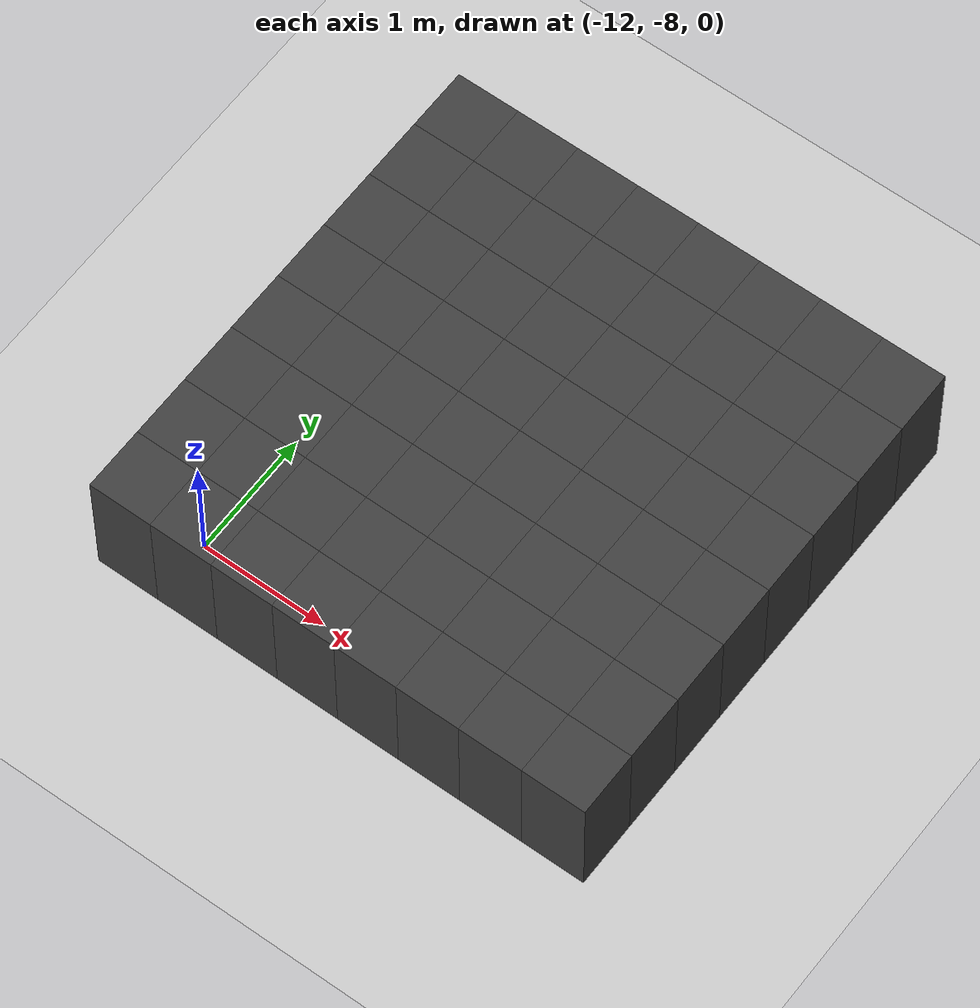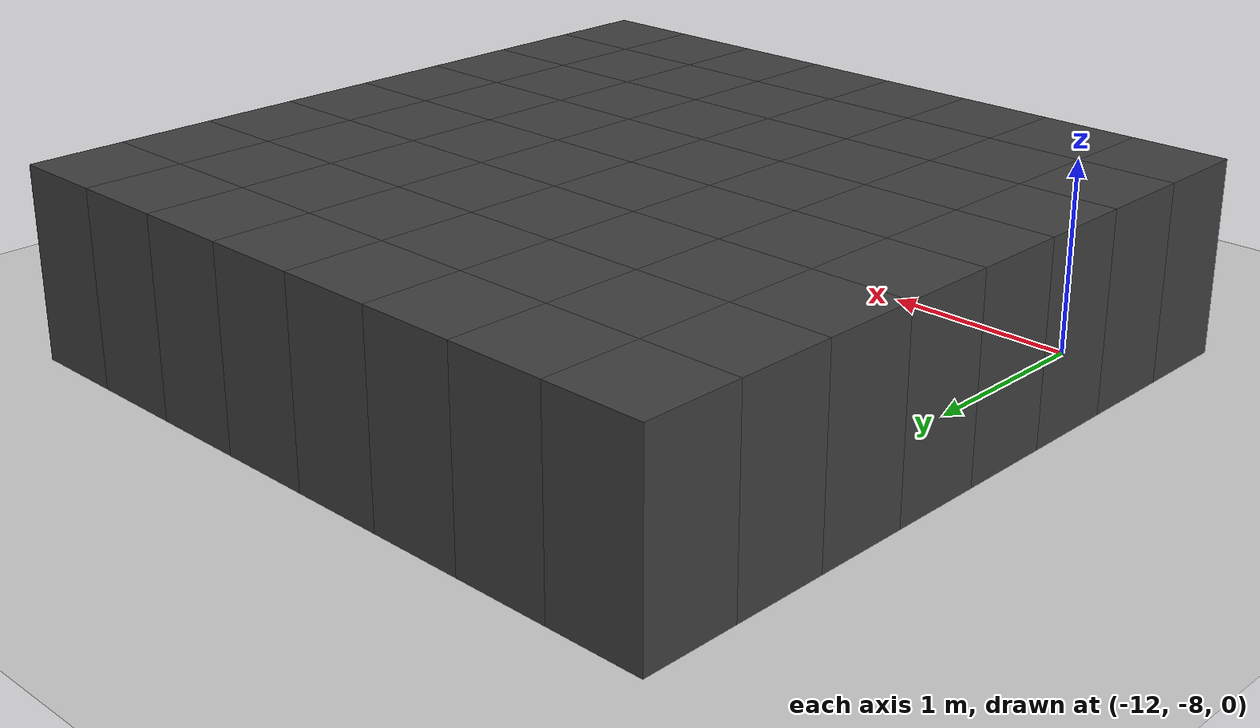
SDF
<sdf version="1.7">
 <world name="map_14735">
  <model name="ground_plane">
   <static>true</static>
   <link name="link">
    <collision name="collision">
     <geometry><plane><normal>0 0 1</normal><size>200 200</size></plane></geometry>
    </collision>
    <visual name="visual">
     <geometry><plane><normal>0 0 1</normal><size>200 200</size></plane></geometry>
     <material><ambient>0.8 0.8 0.8 1</ambient><diffuse>0.8 0.8 0.8 1</diffuse></material>
    </visual>
   </link>
  </model>
  <model name="maze_environment">
   <static>true</static>
   <link name="wall_1102">
    <pose>-12.250 -4.750 0.500 0 0 0</pose>
    <collision name="col"><geometry><box><size>0.5 0.5 1.0</size></box></geometry></collision>
    <visual name="vis">
     <geometry><box><size>0.5 0.5 1.0</size></box></geometry>
     <material><ambient>0.15 0.15 0.15 1</ambient><diffuse>0.25 0.25 0.25 1</diffuse></material>
    </visual>
   </link>
   <link name="wall_1103">
    <pose>-11.750 -4.750 0.500 0 0 0</pose>
    <collision name="col"><geometry><box><size>0.5 0.5 1.0</size></box></geometry></collision>
    <visual name="vis">
     <geometry><box><size>0.5 0.5 1.0</size></box></geometry>
     <material><ambient>0.15 0.15 0.15 1</ambient><diffuse>0.25 0.25 0.25 1</diffuse></material>
    </visual>
   </link>
   <link name="wall_1104">
    <pose>-11.250 -4.750 0.500 0 0 0</pose>
    <collision name="col"><geometry><box><size>0.5 0.5 1.0</size></box></geometry></collision>
    <visual name="vis">
     <geometry><box><size>0.5 0.5 1.0</size></box></geometry>
     <material><ambient>0.15 0.15 0.15 1</ambient><diffuse>0.25 0.25 0.25 1</diffuse></material>
    </visual>
   </link>
   <link name="wall_1105">
    <pose>-10.750 -4.750 0.500 0 0 0</pose>
    <collision name="col"><geometry><box><size>0.5 0.5 1.0</size></box></geometry></collision>
    <visual name="vis">
     <geometry><box><size>0.5 0.5 1.0</size></box></geometry>
     <material><ambient>0.15 0.15 0.15 1</ambient><diffuse>0.25 0.25 0.25 1</diffuse></material>
    </visual>
   </link>
   <link name="wall_1106">
    <pose>-10.250 -4.750 0.500 0 0 0</pose>
    <collision name="col"><geometry><box><size>0.5 0.5 1.0</size></box></geometry></collision>
    <visual name="vis">
     <geometry><box><size>0.5 0.5 1.0</size></box></geometry>
     <material><ambient>0.15 0.15 0.15 1</ambient><diffuse>0.25 0.25 0.25 1</diffuse></material>
    </visual>
   </link>
   <link name="wall_1107">
    <pose>-9.750 -4.750 0.500 0 0 0</pose>
    <collision name="col"><geometry><box><size>0.5 0.5 1.0</size></box></geometry></collision>
    <visual name="vis">
     <geometry><box><size>0.5 0.5 1.0</size></box></geometry>
     <material><ambient>0.15 0.15 0.15 1</ambient><diffuse>0.25 0.25 0.25 1</diffuse></material>
    </visual>
   </link>
   <link name="wall_1108">
    <pose>-9.250 -4.750 0.500 0 0 0</pose>
    <collision name="col"><geometry><box><size>0.5 0.5 1.0</size></box></geometry></collision>
    <visual name="vis">
     <geometry><box><size>0.5 0.5 1.0</size></box></geometry>
     <material><ambient>0.15 0.15 0.15 1</ambient><diffuse>0.25 0.25 0.25 1</diffuse></material>
    </visual>
   </link>
   <link name="wall_1109">
    <pose>-8.750 -4.750 0.500 0 0 0</pose>
    <collision name="col"><geometry><box><size>0.5 0.5 1.0</size></box></geometry></collision>
    <visual name="vis">
     <geometry><box><size>0.5 0.5 1.0</size></box></geometry>
     <material><ambient>0.15 0.15 0.15 1</ambient><diffuse>0.25 0.25 0.25 1</diffuse></material>
    </visual>
   </link>
   <link name="wall_1142">
    <pose>-12.250 -5.250 0.500 0 0 0</pose>
    <collision name="col"><geometry><box><size>0.5 0.5 1.0</size></box></geometry></collision>
    <visual name="vis">
     <geometry><box><size>0.5 0.5 1.0</size></box></geometry>
     <material><ambient>0.15 0.15 0.15 1</ambient><diffuse>0.25 0.25 0.25 1</diffuse></material>
    </visual>
   </link>
   <link name="wall_1143">
    <pose>-11.750 -5.250 0.500 0 0 0</pose>
    <collision name="col"><geometry><box><size>0.5 0.5 1.0</size></box></geometry></collision>
    <visual name="vis">
     <geometry><box><size>0.5 0.5 1.0</size></box></geometry>
     <material><ambient>0.15 0.15 0.15 1</ambient><diffuse>0.25 0.25 0.25 1</diffuse></material>
    </visual>
   </link>
   <link name="wall_1144">
    <pose>-11.250 -5.250 0.500 0 0 0</pose>
    <collision name="col"><geometry><box><size>0.5 0.5 1.0</size></box></geometry></collision>
    <visual name="vis">
     <geometry><box><size>0.5 0.5 1.0</size></box></geometry>
     <material><ambient>0.15 0.15 0.15 1</ambient><diffuse>0.25 0.25 0.25 1</diffuse></material>
    </visual>
   </link>
   <link name="wall_1145">
    <pose>-10.750 -5.250 0.500 0 0 0</pose>
    <collision name="col"><geometry><box><size>0.5 0.5 1.0</size></box></geometry></collision>
    <visual name="vis">
     <geometry><box><size>0.5 0.5 1.0</size></box></geometry>
     <material><ambient>0.15 0.15 0.15 1</ambient><diffuse>0.25 0.25 0.25 1</diffuse></material>
    </visual>
   </link>
   <link name="wall_1146">
    <pose>-10.250 -5.250 0.500 0 0 0</pose>
    <collision name="col"><geometry><box><size>0.5 0.5 1.0</size></box></geometry></collision>
    <visual name="vis">
     <geometry><box><size>0.5 0.5 1.0</size></box></geometry>
     <material><ambient>0.15 0.15 0.15 1</ambient><diffuse>0.25 0.25 0.25 1</diffuse></material>
    </visual>
   </link>
   <link name="wall_1147">
    <pose>-9.750 -5.250 0.500 0 0 0</pose>
    <collision name="col"><geometry><box><size>0.5 0.5 1.0</size></box></geometry></collision>
    <visual name="vis">
     <geometry><box><size>0.5 0.5 1.0</size></box></geometry>
     <material><ambient>0.15 0.15 0.15 1</ambient><diffuse>0.25 0.25 0.25 1</diffuse></material>
    </visual>
   </link>
   <link name="wall_1148">
    <pose>-9.250 -5.250 0.500 0 0 0</pose>
    <collision name="col"><geometry><box><size>0.5 0.5 1.0</size></box></geometry></collision>
    <visual name="vis">
     <geometry><box><size>0.5 0.5 1.0</size></box></geometry>
     <material><ambient>0.15 0.15 0.15 1</ambient><diffuse>0.25 0.25 0.25 1</diffuse></material>
    </visual>
   </link>
   <link name="wall_1149">
    <pose>-8.750 -5.250 0.500 0 0 0</pose>
    <collision name="col"><geometry><box><size>0.5 0.5 1.0</size></box></geometry></collision>
    <visual name="vis">
     <geometry><box><size>0.5 0.5 1.0</size></box></geometry>
     <material><ambient>0.15 0.15 0.15 1</ambient><diffuse>0.25 0.25 0.25 1</diffuse></material>
    </visual>
   </link>
   <link name="wall_1180">
    <pose>-12.250 -5.750 0.500 0 0 0</pose>
    <collision name="col"><geometry><box><size>0.5 0.5 1.0</size></box></geometry></collision>
    <visual name="vis">
     <geometry><box><size>0.5 0.5 1.0</size></box></geometry>
     <material><ambient>0.15 0.15 0.15 1</ambient><diffuse>0.25 0.25 0.25 1</diffuse></material>
    </visual>
   </link>
   <link name="wall_1181">
    <pose>-11.750 -5.750 0.500 0 0 0</pose>
    <collision name="col"><geometry><box><size>0.5 0.5 1.0</size></box></geometry></collision>
    <visual name="vis">
     <geometry><box><size>0.5 0.5 1.0</size></box></geometry>
     <material><ambient>0.15 0.15 0.15 1</ambient><diffuse>0.25 0.25 0.25 1</diffuse></material>
    </visual>
   </link>
   <link name="wall_1182">
    <pose>-11.250 -5.750 0.500 0 0 0</pose>
    <collision name="col"><geometry><box><size>0.5 0.5 1.0</size></box></geometry></collision>
    <visual name="vis">
     <geometry><box><size>0.5 0.5 1.0</size></box></geometry>
     <material><ambient>0.15 0.15 0.15 1</ambient><diffuse>0.25 0.25 0.25 1</diffuse></material>
    </visual>
   </link>
   <link name="wall_1183">
    <pose>-10.750 -5.750 0.500 0 0 0</pose>
    <collision name="col"><geometry><box><size>0.5 0.5 1.0</size></box></geometry></collision>
    <visual name="vis">
     <geometry><box><size>0.5 0.5 1.0</size></box></geometry>
     <material><ambient>0.15 0.15 0.15 1</ambient><diffuse>0.25 0.25 0.25 1</diffuse></material>
    </visual>
   </link>
   <link name="wall_1184">
    <pose>-10.250 -5.750 0.500 0 0 0</pose>
    <collision name="col"><geometry><box><size>0.5 0.5 1.0</size></box></geometry></collision>
    <visual name="vis">
     <geometry><box><size>0.5 0.5 1.0</size></box></geometry>
     <material><ambient>0.15 0.15 0.15 1</ambient><diffuse>0.25 0.25 0.25 1</diffuse></material>
    </visual>
   </link>
   <link name="wall_1185">
    <pose>-9.750 -5.750 0.500 0 0 0</pose>
    <collision name="col"><geometry><box><size>0.5 0.5 1.0</size></box></geometry></collision>
    <visual name="vis">
     <geometry><box><size>0.5 0.5 1.0</size></box></geometry>
     <material><ambient>0.15 0.15 0.15 1</ambient><diffuse>0.25 0.25 0.25 1</diffuse></material>
    </visual>
   </link>
   <link name="wall_1186">
    <pose>-9.250 -5.750 0.500 0 0 0</pose>
    <collision name="col"><geometry><box><size>0.5 0.5 1.0</size></box></geometry></collision>
    <visual name="vis">
     <geometry><box><size>0.5 0.5 1.0</size></box></geometry>
     <material><ambient>0.15 0.15 0.15 1</ambient><diffuse>0.25 0.25 0.25 1</diffuse></material>
    </visual>
   </link>
   <link name="wall_1187">
    <pose>-8.750 -5.750 0.500 0 0 0</pose>
    <collision name="col"><geometry><box><size>0.5 0.5 1.0</size></box></geometry></collision>
    <visual name="vis">
     <geometry><box><size>0.5 0.5 1.0</size></box></geometry>
     <material><ambient>0.15 0.15 0.15 1</ambient><diffuse>0.25 0.25 0.25 1</diffuse></material>
    </visual>
   </link>
   <link name="wall_1218">
    <pose>-12.250 -6.250 0.500 0 0 0</pose>
    <collision name="col"><geometry><box><size>0.5 0.5 1.0</size></box></geometry></collision>
    <visual name="vis">
     <geometry><box><size>0.5 0.5 1.0</size></box></geometry>
     <material><ambient>0.15 0.15 0.15 1</ambient><diffuse>0.25 0.25 0.25 1</diffuse></material>
    </visual>
   </link>
   <link name="wall_1219">
    <pose>-11.750 -6.250 0.500 0 0 0</pose>
    <collision name="col"><geometry><box><size>0.5 0.5 1.0</size></box></geometry></collision>
    <visual name="vis">
     <geometry><box><size>0.5 0.5 1.0</size></box></geometry>
     <material><ambient>0.15 0.15 0.15 1</ambient><diffuse>0.25 0.25 0.25 1</diffuse></material>
    </visual>
   </link>
   <link name="wall_1220">
    <pose>-11.250 -6.250 0.500 0 0 0</pose>
    <collision name="col"><geometry><box><size>0.5 0.5 1.0</size></box></geometry></collision>
    <visual name="vis">
     <geometry><box><size>0.5 0.5 1.0</size></box></geometry>
     <material><ambient>0.15 0.15 0.15 1</ambient><diffuse>0.25 0.25 0.25 1</diffuse></material>
    </visual>
   </link>
   <link name="wall_1221">
    <pose>-10.750 -6.250 0.500 0 0 0</pose>
    <collision name="col"><geometry><box><size>0.5 0.5 1.0</size></box></geometry></collision>
    <visual name="vis">
     <geometry><box><size>0.5 0.5 1.0</size></box></geometry>
     <material><ambient>0.15 0.15 0.15 1</ambient><diffuse>0.25 0.25 0.25 1</diffuse></material>
    </visual>
   </link>
   <link name="wall_1222">
    <pose>-10.250 -6.250 0.500 0 0 0</pose>
    <collision name="col"><geometry><box><size>0.5 0.5 1.0</size></box></geometry></collision>
    <visual name="vis">
     <geometry><box><size>0.5 0.5 1.0</size></box></geometry>
     <material><ambient>0.15 0.15 0.15 1</ambient><diffuse>0.25 0.25 0.25 1</diffuse></material>
    </visual>
   </link>
   <link name="wall_1223">
    <pose>-9.750 -6.250 0.500 0 0 0</pose>
    <collision name="col"><geometry><box><size>0.5 0.5 1.0</size></box></geometry></collision>
    <visual name="vis">
     <geometry><box><size>0.5 0.5 1.0</size></box></geometry>
     <material><ambient>0.15 0.15 0.15 1</ambient><diffuse>0.25 0.25 0.25 1</diffuse></material>
    </visual>
   </link>
   <link name="wall_1224">
    <pose>-9.250 -6.250 0.500 0 0 0</pose>
    <collision name="col"><geometry><box><size>0.5 0.5 1.0</size></box></geometry></collision>
    <visual name="vis">
     <geometry><box><size>0.5 0.5 1.0</size></box></geometry>
     <material><ambient>0.15 0.15 0.15 1</ambient><diffuse>0.25 0.25 0.25 1</diffuse></material>
    </visual>
   </link>
   <link name="wall_1225">
    <pose>-8.750 -6.250 0.500 0 0 0</pose>
    <collision name="col"><geometry><box><size>0.5 0.5 1.0</size></box></geometry></collision>
    <visual name="vis">
     <geometry><box><size>0.5 0.5 1.0</size></box></geometry>
     <material><ambient>0.15 0.15 0.15 1</ambient><diffuse>0.25 0.25 0.25 1</diffuse></material>
    </visual>
   </link>
   <link name="wall_1256">
    <pose>-12.250 -6.750 0.500 0 0 0</pose>
    <collision name="col"><geometry><box><size>0.5 0.5 1.0</size></box></geometry></collision>
    <visual name="vis">
     <geometry><box><size>0.5 0.5 1.0</size></box></geometry>
     <material><ambient>0.15 0.15 0.15 1</ambient><diffuse>0.25 0.25 0.25 1</diffuse></material>
    </visual>
   </link>
   <link name="wall_1257">
    <pose>-11.750 -6.750 0.500 0 0 0</pose>
    <collision name="col"><geometry><box><size>0.5 0.5 1.0</size></box></geometry></collision>
    <visual name="vis">
     <geometry><box><size>0.5 0.5 1.0</size></box></geometry>
     <material><ambient>0.15 0.15 0.15 1</ambient><diffuse>0.25 0.25 0.25 1</diffuse></material>
    </visual>
   </link>
   <link name="wall_1258">
    <pose>-11.250 -6.750 0.500 0 0 0</pose>
    <collision name="col"><geometry><box><size>0.5 0.5 1.0</size></box></geometry></collision>
    <visual name="vis">
     <geometry><box><size>0.5 0.5 1.0</size></box></geometry>
     <material><ambient>0.15 0.15 0.15 1</ambient><diffuse>0.25 0.25 0.25 1</diffuse></material>
    </visual>
   </link>
   <link name="wall_1259">
    <pose>-10.750 -6.750 0.500 0 0 0</pose>
    <collision name="col"><geometry><box><size>0.5 0.5 1.0</size></box></geometry></collision>
    <visual name="vis">
     <geometry><box><size>0.5 0.5 1.0</size></box></geometry>
     <material><ambient>0.15 0.15 0.15 1</ambient><diffuse>0.25 0.25 0.25 1</diffuse></material>
    </visual>
   </link>
   <link name="wall_1260">
    <pose>-10.250 -6.750 0.500 0 0 0</pose>
    <collision name="col"><geometry><box><size>0.5 0.5 1.0</size></box></geometry></collision>
    <visual name="vis">
     <geometry><box><size>0.5 0.5 1.0</size></box></geometry>
     <material><ambient>0.15 0.15 0.15 1</ambient><diffuse>0.25 0.25 0.25 1</diffuse></material>
    </visual>
   </link>
   <link name="wall_1261">
    <pose>-9.750 -6.750 0.500 0 0 0</pose>
    <collision name="col"><geometry><box><size>0.5 0.5 1.0</size></box></geometry></collision>
    <visual name="vis">
     <geometry><box><size>0.5 0.5 1.0</size></box></geometry>
     <material><ambient>0.15 0.15 0.15 1</ambient><diffuse>0.25 0.25 0.25 1</diffuse></material>
    </visual>
   </link>
   <link name="wall_1262">
    <pose>-9.250 -6.750 0.500 0 0 0</pose>
    <collision name="col"><geometry><box><size>0.5 0.5 1.0</size></box></geometry></collision>
    <visual name="vis">
     <geometry><box><size>0.5 0.5 1.0</size></box></geometry>
     <material><ambient>0.15 0.15 0.15 1</ambient><diffuse>0.25 0.25 0.25 1</diffuse></material>
    </visual>
   </link>
   <link name="wall_1263">
    <pose>-8.750 -6.750 0.500 0 0 0</pose>
    <collision name="col"><geometry><box><size>0.5 0.5 1.0</size></box></geometry></collision>
    <visual name="vis">
     <geometry><box><size>0.5 0.5 1.0</size></box></geometry>
     <material><ambient>0.15 0.15 0.15 1</ambient><diffuse>0.25 0.25 0.25 1</diffuse></material>
    </visual>
   </link>
   <link name="wall_1296">
    <pose>-12.250 -7.250 0.500 0 0 0</pose>
    <collision name="col"><geometry><box><size>0.5 0.5 1.0</size></box></geometry></collision>
    <visual name="vis">
     <geometry><box><size>0.5 0.5 1.0</size></box></geometry>
     <material><ambient>0.15 0.15 0.15 1</ambient><diffuse>0.25 0.25 0.25 1</diffuse></material>
    </visual>
   </link>
   <link name="wall_1297">
    <pose>-11.750 -7.250 0.500 0 0 0</pose>
    <collision name="col"><geometry><box><size>0.5 0.5 1.0</size></box></geometry></collision>
    <visual name="vis">
     <geometry><box><size>0.5 0.5 1.0</size></box></geometry>
     <material><ambient>0.15 0.15 0.15 1</ambient><diffuse>0.25 0.25 0.25 1</diffuse></material>
    </visual>
   </link>
   <link name="wall_1298">
    <pose>-11.250 -7.250 0.500 0 0 0</pose>
    <collision name="col"><geometry><box><size>0.5 0.5 1.0</size></box></geometry></collision>
    <visual name="vis">
     <geometry><box><size>0.5 0.5 1.0</size></box></geometry>
     <material><ambient>0.15 0.15 0.15 1</ambient><diffuse>0.25 0.25 0.25 1</diffuse></material>
    </visual>
   </link>
   <link name="wall_1299">
    <pose>-10.750 -7.250 0.500 0 0 0</pose>
    <collision name="col"><geometry><box><size>0.5 0.5 1.0</size></box></geometry></collision>
    <visual name="vis">
     <geometry><box><size>0.5 0.5 1.0</size></box></geometry>
     <material><ambient>0.15 0.15 0.15 1</ambient><diffuse>0.25 0.25 0.25 1</diffuse></material>
    </visual>
   </link>
   <link name="wall_1300">
    <pose>-10.250 -7.250 0.500 0 0 0</pose>
    <collision name="col"><geometry><box><size>0.5 0.5 1.0</size></box></geometry></collision>
    <visual name="vis">
     <geometry><box><size>0.5 0.5 1.0</size></box></geometry>
     <material><ambient>0.15 0.15 0.15 1</ambient><diffuse>0.25 0.25 0.25 1</diffuse></material>
    </visual>
   </link>
   <link name="wall_1301">
    <pose>-9.750 -7.250 0.500 0 0 0</pose>
    <collision name="col"><geometry><box><size>0.5 0.5 1.0</size></box></geometry></collision>
    <visual name="vis">
     <geometry><box><size>0.5 0.5 1.0</size></box></geometry>
     <material><ambient>0.15 0.15 0.15 1</ambient><diffuse>0.25 0.25 0.25 1</diffuse></material>
    </visual>
   </link>
   <link name="wall_1302">
    <pose>-9.250 -7.250 0.500 0 0 0</pose>
    <collision name="col"><geometry><box><size>0.5 0.5 1.0</size></box></geometry></collision>
    <visual name="vis">
     <geometry><box><size>0.5 0.5 1.0</size></box></geometry>
     <material><ambient>0.15 0.15 0.15 1</ambient><diffuse>0.25 0.25 0.25 1</diffuse></material>
    </visual>
   </link>
   <link name="wall_1303">
    <pose>-8.750 -7.250 0.500 0 0 0</pose>
    <collision name="col"><geometry><box><size>0.5 0.5 1.0</size></box></geometry></collision>
    <visual name="vis">
     <geometry><box><size>0.5 0.5 1.0</size></box></geometry>
     <material><ambient>0.15 0.15 0.15 1</ambient><diffuse>0.25 0.25 0.25 1</diffuse></material>
    </visual>
   </link>
   <link name="wall_1337">
    <pose>-12.250 -7.750 0.500 0 0 0</pose>
    <collision name="col"><geometry><box><size>0.5 0.5 1.0</size></box></geometry></collision>
    <visual name="vis">
     <geometry><box><size>0.5 0.5 1.0</size></box></geometry>
     <material><ambient>0.15 0.15 0.15 1</ambient><diffuse>0.25 0.25 0.25 1</diffuse></material>
    </visual>
   </link>
   <link name="wall_1338">
    <pose>-11.750 -7.750 0.500 0 0 0</pose>
    <collision name="col"><geometry><box><size>0.5 0.5 1.0</size></box></geometry></collision>
    <visual name="vis">
     <geometry><box><size>0.5 0.5 1.0</size></box></geometry>
     <material><ambient>0.15 0.15 0.15 1</ambient><diffuse>0.25 0.25 0.25 1</diffuse></material>
    </visual>
   </link>
   <link name="wall_1339">
    <pose>-11.250 -7.750 0.500 0 0 0</pose>
    <collision name="col"><geometry><box><size>0.5 0.5 1.0</size></box></geometry></collision>
    <visual name="vis">
     <geometry><box><size>0.5 0.5 1.0</size></box></geometry>
     <material><ambient>0.15 0.15 0.15 1</ambient><diffuse>0.25 0.25 0.25 1</diffuse></material>
    </visual>
   </link>
   <link name="wall_1340">
    <pose>-10.750 -7.750 0.500 0 0 0</pose>
    <collision name="col"><geometry><box><size>0.5 0.5 1.0</size></box></geometry></collision>
    <visual name="vis">
     <geometry><box><size>0.5 0.5 1.0</size></box></geometry>
     <material><ambient>0.15 0.15 0.15 1</ambient><diffuse>0.25 0.25 0.25 1</diffuse></material>
    </visual>
   </link>
   <link name="wall_1341">
    <pose>-10.250 -7.750 0.500 0 0 0</pose>
    <collision name="col"><geometry><box><size>0.5 0.5 1.0</size></box></geometry></collision>
    <visual name="vis">
     <geometry><box><size>0.5 0.5 1.0</size></box></geometry>
     <material><ambient>0.15 0.15 0.15 1</ambient><diffuse>0.25 0.25 0.25 1</diffuse></material>
    </visual>
   </link>
   <link name="wall_1342">
    <pose>-9.750 -7.750 0.500 0 0 0</pose>
    <collision name="col"><geometry><box><size>0.5 0.5 1.0</size></box></geometry></collision>
    <visual name="vis">
     <geometry><box><size>0.5 0.5 1.0</size></box></geometry>
     <material><ambient>0.15 0.15 0.15 1</ambient><diffuse>0.25 0.25 0.25 1</diffuse></material>
    </visual>
   </link>
   <link name="wall_1343">
    <pose>-9.250 -7.750 0.500 0 0 0</pose>
    <collision name="col"><geometry><box><size>0.5 0.5 1.0</size></box></geometry></collision>
    <visual name="vis">
     <geometry><box><size>0.5 0.5 1.0</size></box></geometry>
     <material><ambient>0.15 0.15 0.15 1</ambient><diffuse>0.25 0.25 0.25 1</diffuse></material>
    </visual>
   </link>
   <link name="wall_1344">
    <pose>-8.750 -7.750 0.500 0 0 0</pose>
    <collision name="col"><geometry><box><size>0.5 0.5 1.0</size></box></geometry></collision>
    <visual name="vis">
     <geometry><box><size>0.5 0.5 1.0</size></box></geometry>
     <material><ambient>0.15 0.15 0.15 1</ambient><diffuse>0.25 0.25 0.25 1</diffuse></material>
    </visual>
   </link>
   <link name="wall_1379">
    <pose>-12.250 -8.250 0.500 0 0 0</pose>
    <collision name="col"><geometry><box><size>0.5 0.5 1.0</size></box></geometry></collision>
    <visual name="vis">
     <geometry><box><size>0.5 0.5 1.0</size></box></geometry>
     <material><ambient>0.15 0.15 0.15 1</ambient><diffuse>0.25 0.25 0.25 1</diffuse></material>
    </visual>
   </link>
   <link name="wall_1380">
    <pose>-11.750 -8.250 0.500 0 0 0</pose>
    <collision name="col"><geometry><box><size>0.5 0.5 1.0</size></box></geometry></collision>
    <visual name="vis">
     <geometry><box><size>0.5 0.5 1.0</size></box></geometry>
     <material><ambient>0.15 0.15 0.15 1</ambient><diffuse>0.25 0.25 0.25 1</diffuse></material>
    </visual>
   </link>
   <link name="wall_1381">
    <pose>-11.250 -8.250 0.500 0 0 0</pose>
    <collision name="col"><geometry><box><size>0.5 0.5 1.0</size></box></geometry></collision>
    <visual name="vis">
     <geometry><box><size>0.5 0.5 1.0</size></box></geometry>
     <material><ambient>0.15 0.15 0.15 1</ambient><diffuse>0.25 0.25 0.25 1</diffuse></material>
    </visual>
   </link>
   <link name="wall_1382">
    <pose>-10.750 -8.250 0.500 0 0 0</pose>
    <collision name="col"><geometry><box><size>0.5 0.5 1.0</size></box></geometry></collision>
    <visual name="vis">
     <geometry><box><size>0.5 0.5 1.0</size></box></geometry>
     <material><ambient>0.15 0.15 0.15 1</ambient><diffuse>0.25 0.25 0.25 1</diffuse></material>
    </visual>
   </link>
   <link name="wall_1383">
    <pose>-10.250 -8.250 0.500 0 0 0</pose>
    <collision name="col"><geometry><box><size>0.5 0.5 1.0</size></box></geometry></collision>
    <visual name="vis">
     <geometry><box><size>0.5 0.5 1.0</size></box></geometry>
     <material><ambient>0.15 0.15 0.15 1</ambient><diffuse>0.25 0.25 0.25 1</diffuse></material>
    </visual>
   </link>
   <link name="wall_1384">
    <pose>-9.750 -8.250 0.500 0 0 0</pose>
    <collision name="col"><geometry><box><size>0.5 0.5 1.0</size></box></geometry></collision>
    <visual name="vis">
     <geometry><box><size>0.5 0.5 1.0</size></box></geometry>
     <material><ambient>0.15 0.15 0.15 1</ambient><diffuse>0.25 0.25 0.25 1</diffuse></material>
    </visual>
   </link>
   <link name="wall_1385">
    <pose>-9.250 -8.250 0.500 0 0 0</pose>
    <collision name="col"><geometry><box><size>0.5 0.5 1.0</size></box></geometry></collision>
    <visual name="vis">
     <geometry><box><size>0.5 0.5 1.0</size></box></geometry>
     <material><ambient>0.15 0.15 0.15 1</ambient><diffuse>0.25 0.25 0.25 1</diffuse></material>
    </visual>
   </link>
   <link name="wall_1386">
    <pose>-8.750 -8.250 0.500 0 0 0</pose>
    <collision name="col"><geometry><box><size>0.5 0.5 1.0</size></box></geometry></collision>
    <visual name="vis">
     <geometry><box><size>0.5 0.5 1.0</size></box></geometry>
     <material><ambient>0.15 0.15 0.15 1</ambient><diffuse>0.25 0.25 0.25 1</diffuse></material>
    </visual>
   </link>
  </model>
 </world>
</sdf>
